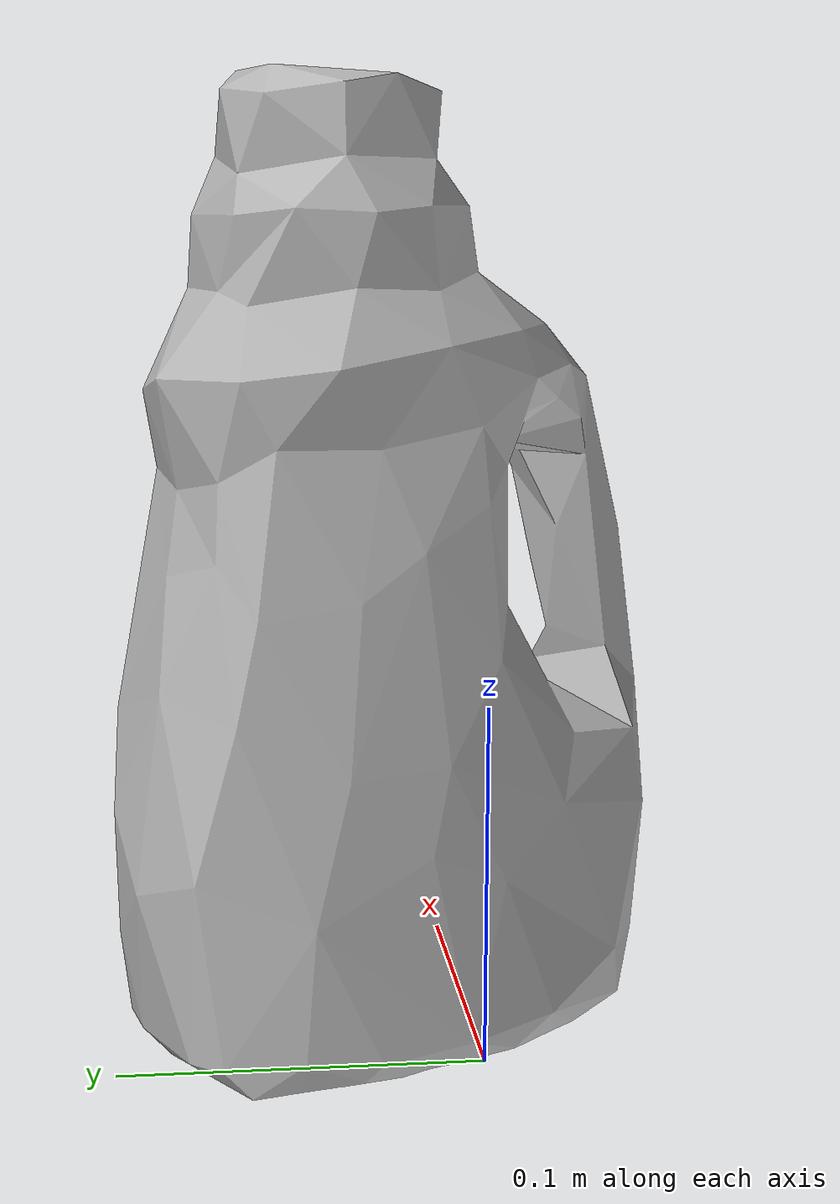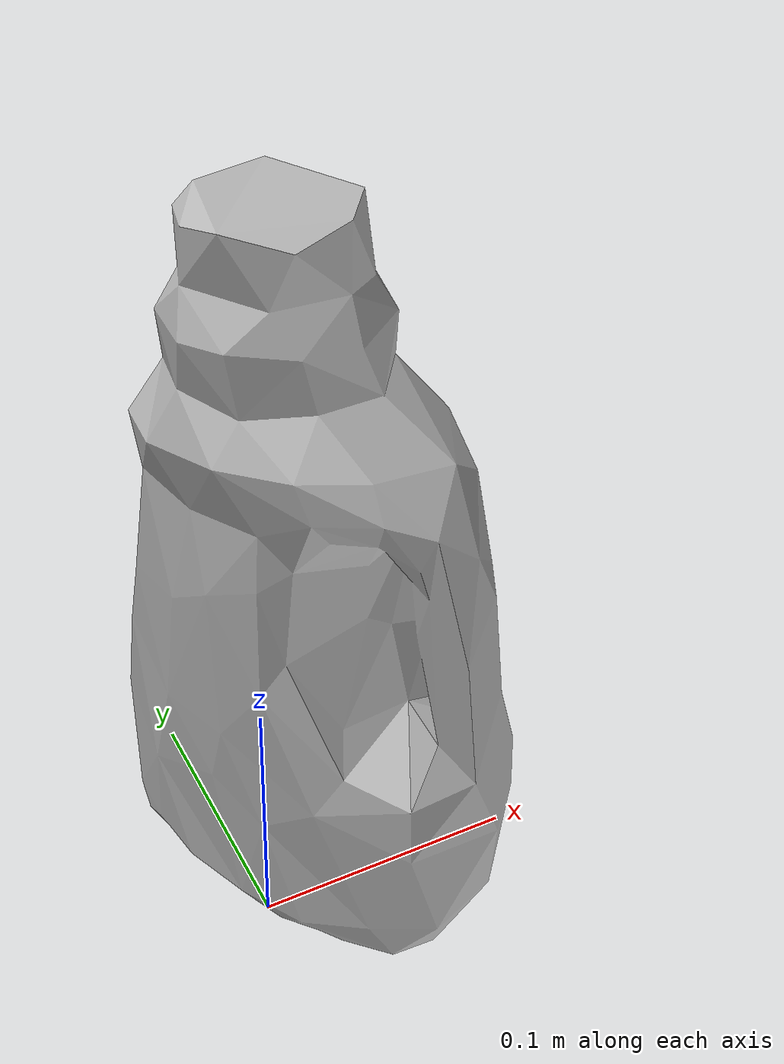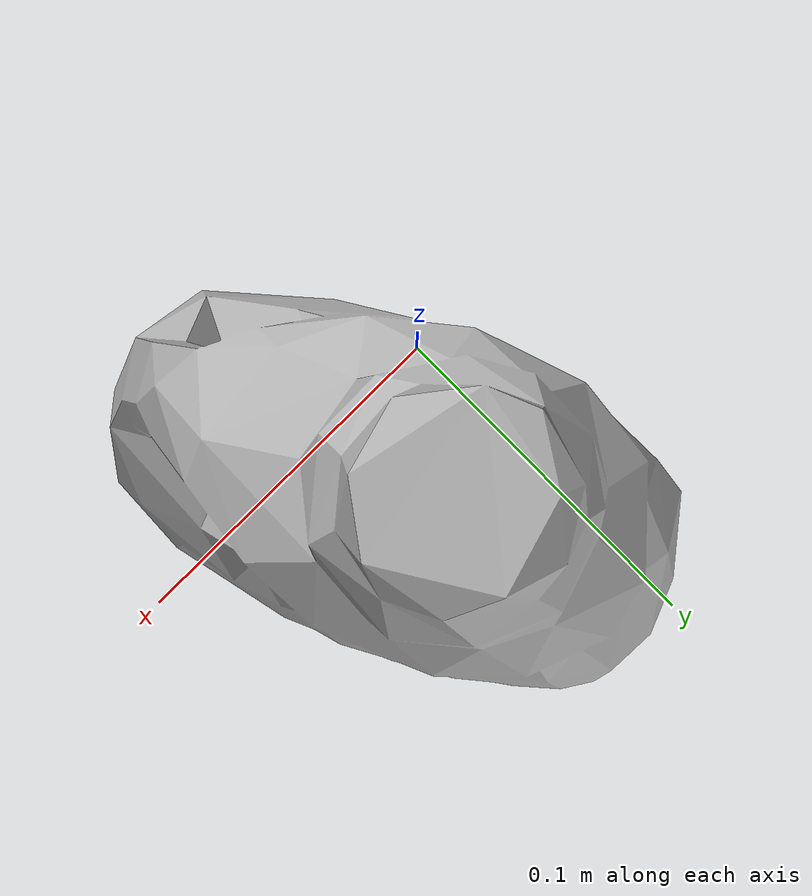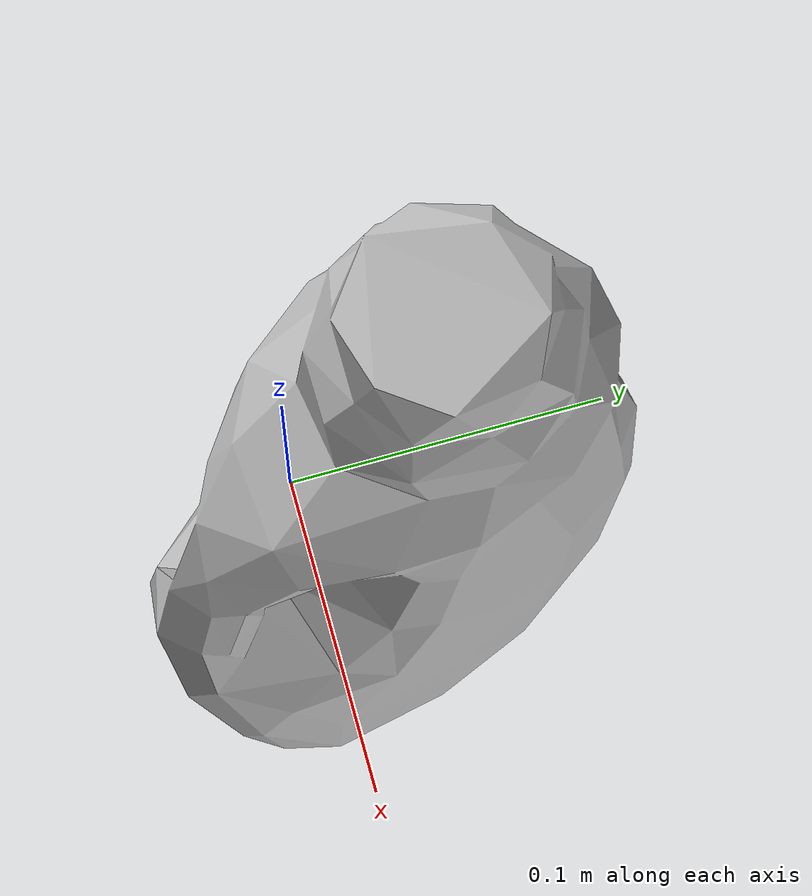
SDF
<?xml version='1.0'?>
<sdf version="1.4">
  <model name="detergent">
    <static>false</static>
    <link name="link">
      <inertial>
        <pose>0.031544236838706025 0.027623194843701994 0.11281239709523577 -3.0729249866612776 -0.01058625055211581 -2.749871843261333</pose>
        <mass>0.133</mass>
        <inertia>
          <ixx>0.0013722527879395394</ixx>
          <ixy>-1.2323112038956864e-20</ixy>
          <ixz>-1.913063743002483e-21</ixz>
          <iyy>0.0011838963685651192</iyy>
          <iyz>-3.578789945438431e-20</iyz>
          <izz>0.0004151084762836111</izz>
        </inertia>
      </inertial>
      <collision name="collision">
        <geometry>
          <mesh>
            <!-- Use a downsampled mesh for collisions -->
            <uri>model:///detergent/detergent_250_collision.obj</uri>
	        </mesh>
        </geometry>
        <surface>
      </surface>
      </collision>
      <visual name="visual">
        <geometry>
          <mesh>
            <uri>model:///detergent/optimized_tsdf_texture_mapped_mesh.obj</uri>
	        </mesh>
        </geometry>
        <material>
          <script>
            <uri>model:///detergent/detergent.material</uri>
            <name>detergent</name>
          </script>
        </material>
      </visual>
    </link>
  </model>
</sdf>
